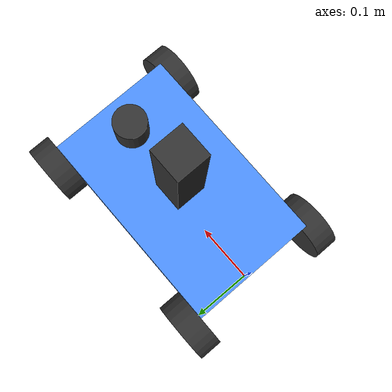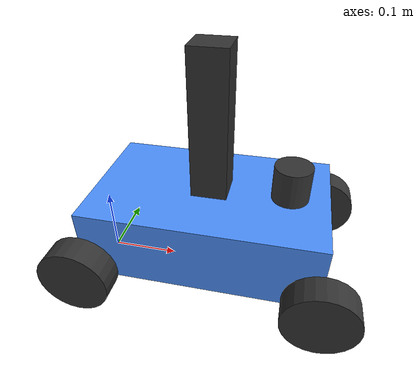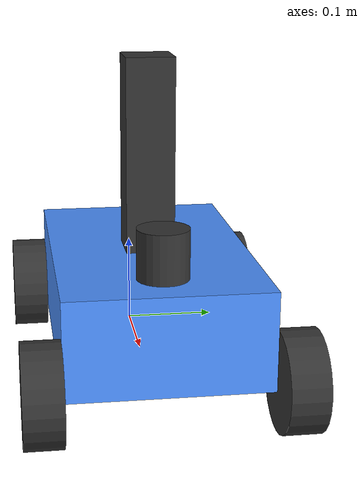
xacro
<?xml version="1.0"?>

<!-- A simple model of the racecar for rviz -->

<robot xmlns:xacro="http://www.ros.org/wiki/xacro" name="racecar">

  <xacro:property name="wheelbase" value="0.3302" />
  <xacro:property name="width" value="0.2032" />
  <xacro:property name="height" value="0.1" />
  <xacro:property name="ground_offset" value="0.04" />
  <xacro:property name="wheel_radius" value="0.0508" />
  <xacro:property name="wheel_length" value="0.0381" />
  <xacro:property name="laser_distance_from_base_link" value="0.275" />
  <xacro:property name="laser_height" value="0.05" />
  <xacro:property name="laser_radius" value="0.026" />

  <material name="black">
    <color rgba="0.2 0.2 0.2 1."/>
  </material>

  <material name="blue">
    <color rgba="0.3 0.57 1. 1."/>
  </material>

  <link name="base_link">
    <visual>
      <origin xyz="${wheelbase/2} 0 ${ground_offset+height/2}"/>
      <geometry>
        <box size="${wheelbase} ${width} ${height}"/>
      </geometry>
      <material name="blue"/>
    </visual>
  </link>

  <joint name="base_to_laser_model" type="fixed">
    <parent link="base_link"/>
    <child link="laser_model"/>
    <origin xyz="${laser_distance_from_base_link} 0 ${ground_offset+height+(laser_height/2)}"/>
  </joint>

  <link name="laser_model">
    <visual>
      <geometry>
        <cylinder radius="${laser_radius}" length="${laser_height}"/>
      </geometry>
      <material name="black"/>
    </visual>
  </link>

  <joint name="base_to_back_left_wheel" type="fixed">
    <parent link="base_link"/>
    <child link="back_left_wheel"/>
    <origin xyz="0 ${(wheel_length+width)/2} ${wheel_radius}"/>
  </joint>

  <link name="back_left_wheel">
    <visual>
      <geometry>
        <cylinder radius="${wheel_radius}" length="${wheel_length}"/>
      </geometry>
      <material name="black"/>
      <origin rpy="${pi/2} 0 0"/>
    </visual>
  </link>

  <joint name="base_to_back_right_wheel" type="fixed">
    <parent link="base_link"/>
    <child link="back_right_wheel"/>
    <origin xyz="0 ${-(wheel_length+width)/2} ${wheel_radius}"/>
  </joint>

  <link name="back_right_wheel">
    <visual>
      <geometry>
        <cylinder radius="${wheel_radius}" length="${wheel_length}"/>
      </geometry>
      <material name="black"/>
      <origin rpy="${pi/2} 0 0"/>
    </visual>
  </link>

  <joint name="base_to_front_left_hinge" type="fixed">
    <parent link="base_link"/>
    <child link="front_left_hinge"/>
    <origin xyz="${wheelbase} ${(wheel_length+width)/2} ${wheel_radius}"/>
  </joint>

  <link name="front_left_hinge"/>

  <joint name="front_left_hinge_to_wheel" type="continuous">
    <parent link="front_left_hinge"/>
    <child link="front_left_wheel"/>
  </joint>

  <link name="front_left_wheel">
    <visual>
      <geometry>
        <cylinder radius="${wheel_radius}" length="${wheel_length}"/>
      </geometry>
      <material name="black"/>
      <origin rpy="${pi/2} 0 0"/>
    </visual>
  </link>

  <joint name="base_to_front_right_hinge" type="fixed">
    <parent link="base_link"/>
    <child link="front_right_hinge"/>
    <origin xyz="${wheelbase} ${-(wheel_length+width)/2} ${wheel_radius}"/>
  </joint>

  <link name="front_right_hinge"/>

  <joint name="front_right_hinge_to_wheel" type="continuous">
    <parent link="front_right_hinge"/>
    <child link="front_right_wheel"/>
  </joint>

  <link name="front_right_wheel">
    <visual>
      <geometry>
        <cylinder radius="${wheel_radius}" length="${wheel_length}"/>
      </geometry>
      <material name="black"/>
      <origin rpy="${pi/2} 0 0"/>
    </visual>
  </link>

  <link name="camera_link">
    <visual>
      <origin rpy="0 0 0" xyz="${wheelbase/2} 0 ${ground_offset+height*2}" />
      <geometry>
        <box size="0.05 0.05 0.2" />
      </geometry>
      <material name="black"/>
    </visual>
  </link>

  <joint name="camera_joint" type="fixed">
    <parent link="base_link" />
    <child link="camera_link" />
  </joint>

<gazebo reference="camera_link">
    <sensor type="camera" name="camera">
      <update_rate>30.0</update_rate>
      <camera name="head">
        <horizontal_fov>1.396</horizontal_fov>
        <image>
          <width>800</width>
          <height>800</height>
          <format>R8G8B8</format>
        </image>
        <clip>
          <near>0.02</near>
          <far>300</far>
        </clip>
        <noise>
          <type>gaussian</type>
          <mean>0.0</mean>
          <stddev>0.007</stddev>
        </noise>
      </camera>
      <plugin name="camera_controller" filename="libgazebo_ros_camera.so">
        <alwaysOn>true</alwaysOn>
        <updateRate>0.0</updateRate>
        <cameraName>mando/camera</cameraName>
        <imageTopicName>image_raw</imageTopicName>
        <cameraInfoTopicName>camera_info</cameraInfoTopicName>
        <frameName>camera_link</frameName>
        <hackBaseline>0.07</hackBaseline>
        <distortionK1>0.0</distortionK1>
        <distortionK2>0.0</distortionK2>
        <distortionK3>0.0</distortionK3>
        <distortionT1>0.0</distortionT1>
        <distortionT2>0.0</distortionT2>
      </plugin>
    </sensor>
</gazebo>

</robot>
